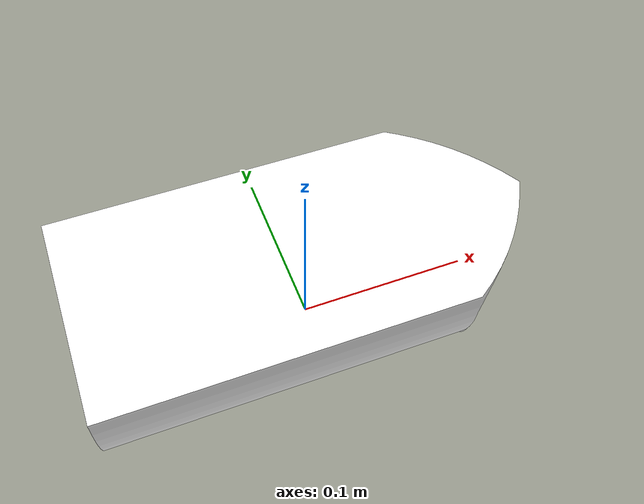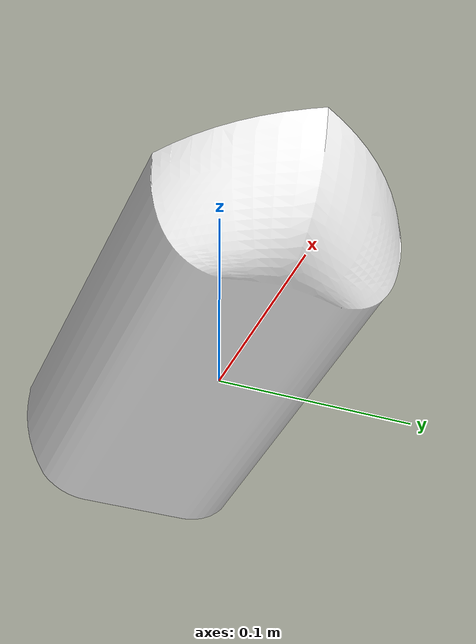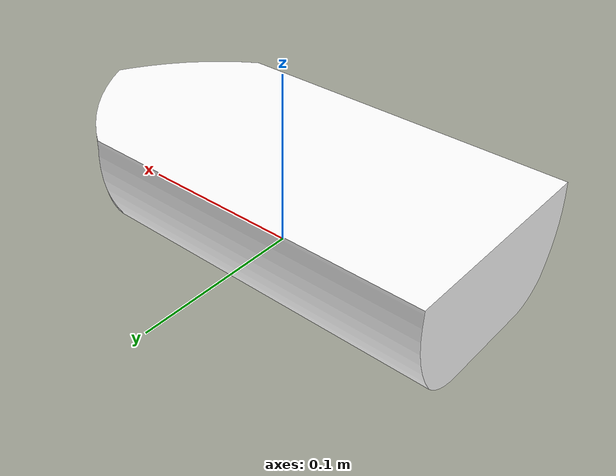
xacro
<?xml version="1.0" ?>
<robot name="aries_01" xmlns:xacro="http://www.ros.org/wiki/xacro">
  <gazebo>
    <static>false</static>
  </gazebo>
  <!--                            BOAT HULL                                  -->
  <link name="boat_hull">
    <collision name="collision">
      <geometry>
        <mesh filename="file://$(find gazebo_simulation)/urdf/collada/boat_hull.dae" />
      </geometry>
    </collision>

    <visual name="visual">
      <geometry>
        <mesh filename="file://$(find gazebo_simulation)/urdf/collada/boat_hull.dae" />
      </geometry>
    </visual>

    <inertial>
       <mass value="0.8" />
       <inertia
         ixx="0.0000020778656"
         ixy="-0.000000089099184"
         ixz="0.0000000000189384648"
         iyy="0.00000824124569"
         iyz="0.0000000000531947773"
         izz="0.0000070840279"
       />
    </inertial>

    <buoyancy>
      <compensation>1.25</compensation>
      <origin xyz="0 0 0.040"/>
      <limit radius="0.031"/>
      <damping xyz="60 100 100"/>
    </buoyancy>
  </link>
</robot>
